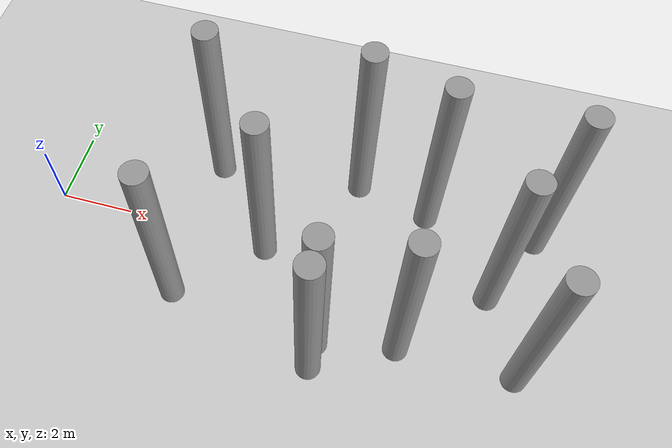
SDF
<sdf version="1.5">
 <world name="default">
  <light name="sun" type="directional">
   <cast_shadows>0</cast_shadows>
   <pose>0 0 10 0 -0 0</pose>
   <diffuse>0.8 0.8 0.8 1</diffuse>
   <specular>0.2 0.2 0.2 1</specular>
   <attenuation>
    <range>1000</range>
    <constant>0.9</constant>
    <linear>0.01</linear>
    <quadratic>0.001</quadratic>
   </attenuation>
   <direction>-0.5 0.1 -0.9</direction>
  </light>
  <model name="ground_plane">
   <static>1</static>
   <link name="link">
    <collision name="collision">
     <geometry><plane><normal>0 0 1</normal><size>200 200</size></plane></geometry>
     <surface><friction><ode><mu>100</mu><mu2>50</mu2></ode></friction></surface>
    </collision>
    <visual name="visual">
     <cast_shadows>0</cast_shadows>
     <geometry><plane><normal>0 0 1</normal><size>200 200</size></plane></geometry>
     <material>
      <script><uri>file://media/materials/scripts/gazebo.material</uri><name>Gazebo/Grey</name></script>
     </material>
    </visual>
   </link>
  </model>
  <physics name="default_physics" default="0" type="ode">
   <max_step_size>0.001</max_step_size>
   <real_time_factor>1</real_time_factor>
   <real_time_update_rate>1000</real_time_update_rate>
   <gravity>0 0 -9.8</gravity>
   <magnetic_field>5.5645e-06 2.28758e-05 -4.23884e-05</magnetic_field>
  </physics>
  <scene><ambient>0.4 0.4 0.4 1</ambient><background>0.7 0.7 0.7 1</background><shadows>0</shadows></scene>
  <spherical_coordinates>
   <surface_model>EARTH_WGS84</surface_model>
   <latitude_deg>0</latitude_deg>
   <longitude_deg>0</longitude_deg>
   <elevation>0</elevation>
   <heading_deg>0</heading_deg>
  </spherical_coordinates>
  <model name="unit_cylinder_1_clone">
   <pose>5.9871 -0.134585 2.81268 0 -0 0.00676</pose>
   <link name="link">
    <inertial>
     <mass>1</mass>
     <inertia><ixx>0.145833</ixx><ixy>0</ixy><ixz>0</ixz><iyy>0.145833</iyy><iyz>0</iyz><izz>0.125</izz></inertia>
    </inertial>
    <collision name="collision">
     <geometry><cylinder><radius>0.320436</radius><length>5.62538</length></cylinder></geometry>
    </collision>
    <visual name="visual">
     <geometry><cylinder><radius>0.320436</radius><length>5.62538</length></cylinder></geometry>
     <material>
      <script><name>Gazebo/Grey</name><uri>file://media/materials/scripts/gazebo.material</uri></script>
     </material>
    </visual>
   </link>
  </model>
  <model name="unit_cylinder_1_clone_3">
   <pose>4.09101 2.09142 2.81268 0 -0 0.00694</pose>
   <link name="link">
    <inertial>
     <mass>1</mass>
     <inertia><ixx>0.145833</ixx><ixy>0</ixy><ixz>0</ixz><iyy>0.145833</iyy><iyz>0</iyz><izz>0.125</izz></inertia>
    </inertial>
    <collision name="collision">
     <geometry><cylinder><radius>0.320436</radius><length>5.62538</length></cylinder></geometry>
    </collision>
    <visual name="visual">
     <geometry><cylinder><radius>0.320436</radius><length>5.62538</length></cylinder></geometry>
     <material>
      <script><name>Gazebo/Grey</name><uri>file://media/materials/scripts/gazebo.material</uri></script>
     </material>
    </visual>
   </link>
  </model>
  <model name="unit_cylinder_1_clone_clone">
   <pose>3.99998 -1.99995 2.81269 0 -0 0.006759</pose>
   <link name="link">
    <inertial>
     <mass>1</mass>
     <inertia><ixx>0.145833</ixx><ixy>0</ixy><ixz>0</ixz><iyy>0.145833</iyy><iyz>0</iyz><izz>0.125</izz></inertia>
    </inertial>
    <collision name="collision">
     <geometry><cylinder><radius>0.320436</radius><length>5.62538</length></cylinder></geometry>
    </collision>
    <visual name="visual">
     <geometry><cylinder><radius>0.320436</radius><length>5.62538</length></cylinder></geometry>
     <material>
      <script><name>Gazebo/Grey</name><uri>file://media/materials/scripts/gazebo.material</uri></script>
     </material>
    </visual>
   </link>
  </model>
  <model name="unit_cylinder_1_clone_clone_4">
   <pose>12 3.8e-05 2.81269 0 -0 0.006759</pose>
   <link name="link">
    <inertial>
     <mass>1</mass>
     <inertia><ixx>0.145833</ixx><ixy>0</ixy><ixz>0</ixz><iyy>0.145833</iyy><iyz>0</iyz><izz>0.125</izz></inertia>
    </inertial>
    <collision name="collision">
     <geometry><cylinder><radius>0.320436</radius><length>5.62538</length></cylinder></geometry>
    </collision>
    <visual name="visual">
     <geometry><cylinder><radius>0.320436</radius><length>5.62538</length></cylinder></geometry>
     <material>
      <script><name>Gazebo/Grey</name><uri>file://media/materials/scripts/gazebo.material</uri></script>
     </material>
    </visual>
   </link>
  </model>
  <model name="unit_cylinder_1_clone_clone_2_clone">
   <pose>7.99989 -3.0585 2.81268 0 -0 0.007238</pose>
   <link name="link">
    <inertial>
     <mass>1</mass>
     <inertia><ixx>0.145833</ixx><ixy>0</ixy><ixz>0</ixz><iyy>0.145833</iyy><iyz>0</iyz><izz>0.125</izz></inertia>
    </inertial>
    <collision name="collision">
     <geometry><cylinder><radius>0.320436</radius><length>5.62538</length></cylinder></geometry>
    </collision>
    <visual name="visual">
     <geometry><cylinder><radius>0.320436</radius><length>5.62538</length></cylinder></geometry>
     <material>
      <script><name>Gazebo/Grey</name><uri>file://media/materials/scripts/gazebo.material</uri></script>
     </material>
    </visual>
   </link>
  </model>
  <model name="unit_cylinder_1_clone_clone_2_clone_0">
   <pose>7.99997 -2.41576 2.81269 0 -0 0.006065</pose>
   <link name="link">
    <inertial>
     <mass>1</mass>
     <inertia><ixx>0.145833</ixx><ixy>0</ixy><ixz>0</ixz><iyy>0.145833</iyy><iyz>0</iyz><izz>0.125</izz></inertia>
    </inertial>
    <collision name="collision">
     <geometry><cylinder><radius>0.320436</radius><length>5.62538</length></cylinder></geometry>
    </collision>
    <visual name="visual">
     <geometry><cylinder><radius>0.320436</radius><length>5.62538</length></cylinder></geometry>
     <material>
      <script><name>Gazebo/Grey</name><uri>file://media/materials/scripts/gazebo.material</uri></script>
     </material>
    </visual>
   </link>
  </model>
  <model name="unit_cylinder_1_clone_clone_2_clone_1">
   <pose>7.99999 2.50028 2.81269 0 -0 0.006737</pose>
   <link name="link">
    <inertial>
     <mass>1</mass>
     <inertia><ixx>0.145833</ixx><ixy>0</ixy><ixz>0</ixz><iyy>0.145833</iyy><iyz>0</iyz><izz>0.125</izz></inertia>
    </inertial>
    <collision name="collision">
     <geometry><cylinder><radius>0.320436</radius><length>5.62538</length></cylinder></geometry>
    </collision>
    <visual name="visual">
     <geometry><cylinder><radius>0.320436</radius><length>5.62538</length></cylinder></geometry>
     <material>
      <script><name>Gazebo/Grey</name><uri>file://media/materials/scripts/gazebo.material</uri></script>
     </material>
    </visual>
   </link>
  </model>
  <model name="unit_cylinder_1_clone_clone_4_clone">
   <pose>10 2.00001 2.81268 0 -0 0.006758</pose>
   <link name="link">
    <inertial>
     <mass>1</mass>
     <inertia><ixx>0.145833</ixx><ixy>0</ixy><ixz>0</ixz><iyy>0.145833</iyy><iyz>0</iyz><izz>0.125</izz></inertia>
    </inertial>
    <collision name="collision">
     <geometry><cylinder><radius>0.320436</radius><length>5.62538</length></cylinder></geometry>
    </collision>
    <visual name="visual">
     <geometry><cylinder><radius>0.320436</radius><length>5.62538</length></cylinder></geometry>
     <material>
      <script><name>Gazebo/Grey</name><uri>file://media/materials/scripts/gazebo.material</uri></script>
     </material>
    </visual>
   </link>
  </model>
  <model name="unit_cylinder_1_clone_clone_4_clone_0">
   <pose>10 -1.99999 2.81269 0 -0 0.006728</pose>
   <link name="link">
    <inertial>
     <mass>1</mass>
     <inertia><ixx>0.145833</ixx><ixy>0</ixy><ixz>0</ixz><iyy>0.145833</iyy><iyz>0</iyz><izz>0.125</izz></inertia>
    </inertial>
    <collision name="collision">
     <geometry><cylinder><radius>0.320436</radius><length>5.62538</length></cylinder></geometry>
    </collision>
    <visual name="visual">
     <geometry><cylinder><radius>0.320436</radius><length>5.62538</length></cylinder></geometry>
     <material>
      <script><name>Gazebo/Grey</name><uri>file://media/materials/scripts/gazebo.material</uri></script>
     </material>
    </visual>
   </link>
  </model>
  <model name="unit_cylinder_1_clone_clone_4_clone_clone">
   <pose>13 2 2.81268 0 -0 0.006758</pose>
   <link name="link">
    <inertial>
     <mass>1</mass>
     <inertia><ixx>0.145833</ixx><ixy>0</ixy><ixz>0</ixz><iyy>0.145833</iyy><iyz>0</iyz><izz>0.125</izz></inertia>
    </inertial>
    <collision name="collision">
     <geometry><cylinder><radius>0.320436</radius><length>5.62538</length></cylinder></geometry>
    </collision>
    <visual name="visual">
     <geometry><cylinder><radius>0.320436</radius><length>5.62538</length></cylinder></geometry>
     <material>
      <script><name>Gazebo/Grey</name><uri>file://media/materials/scripts/gazebo.material</uri></script>
     </material>
    </visual>
   </link>
  </model>
  <model name="unit_cylinder_1_clone_clone_4_clone_clone_0">
   <pose>13 -2 2.81269 0 -0 0.006717</pose>
   <link name="link">
    <inertial>
     <mass>1</mass>
     <inertia><ixx>0.145833</ixx><ixy>0</ixy><ixz>0</ixz><iyy>0.145833</iyy><iyz>0</iyz><izz>0.125</izz></inertia>
    </inertial>
    <collision name="collision">
     <geometry><cylinder><radius>0.320436</radius><length>5.62538</length></cylinder></geometry>
    </collision>
    <visual name="visual">
     <geometry><cylinder><radius>0.320436</radius><length>5.62538</length></cylinder></geometry>
     <material>
      <script><name>Gazebo/Grey</name><uri>file://media/materials/scripts/gazebo.material</uri></script>
     </material>
    </visual>
   </link>
  </model>
 </world>
</sdf>
